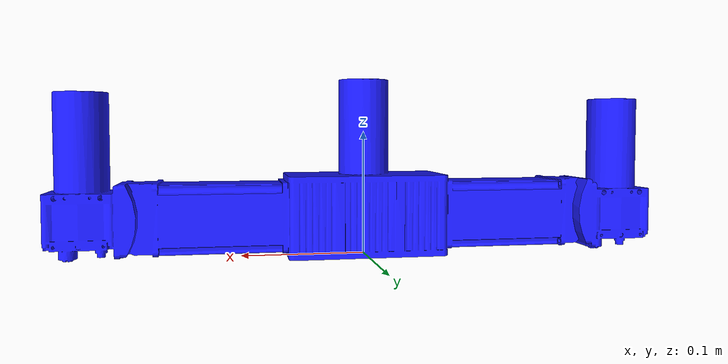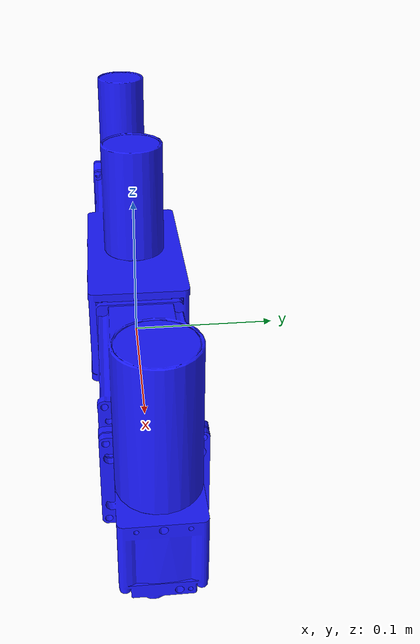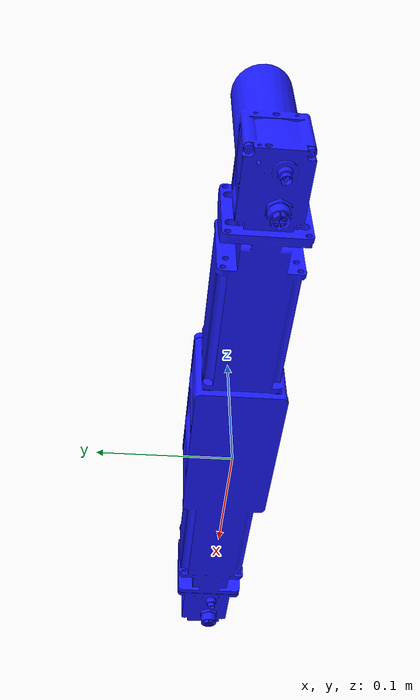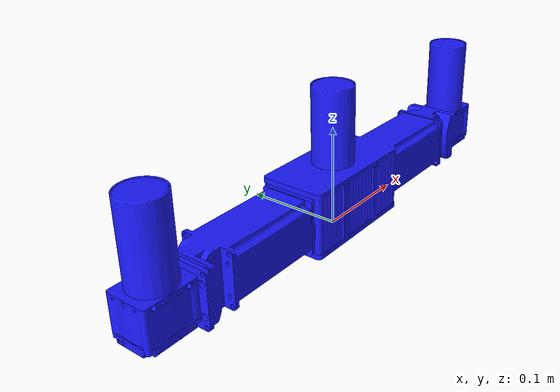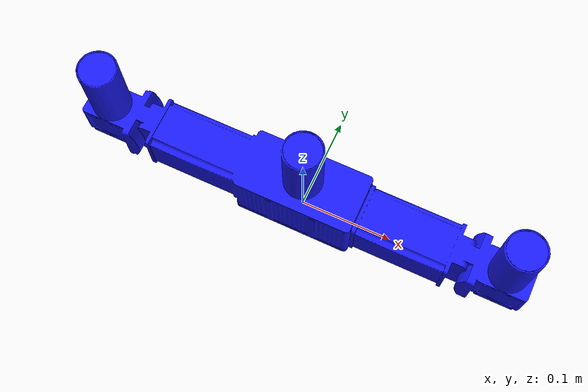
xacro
<?xml version="1.0"?>
<robot name="ensenso_camera" xmlns:xacro="http://www.ros.org/wiki/xacro">
  <xacro:include filename="$(find ensenso_description)/ensenso.xacro" />

  <!-- Parameters -->
  <!-- Name of the camera -->
  <xacro:arg name="camera" default="X400_xFA" />
  <xacro:property name="camera_name" value="$(arg camera)" />

  <!-- Enlarges the bounding box in all directions -->
  <xacro:arg name="margin" default="0.03" />
  <xacro:property name="margin" value="$(arg margin)" />

  <!-- tf frame that references to the cameras mounting frame -->
  <xacro:arg name="corresponding_frame_name" default="base_link" />
  <xacro:property name="corresponding_frame_name" value="$(arg corresponding_frame_name)" />

  <xacro:ensenso_X400_xFA_Series name="${camera_name}" margin="${margin}"/>
  <joint name="${corresponding_frame_name}_to_${camera_name}" type="fixed">
    <parent link="${corresponding_frame_name}" />
    <child link="${camera_name}" />
    <origin xyz="0 0 0" rpy="0 0 0" />
  </joint>

  <link name="${corresponding_frame_name}" />
</robot>
<!-- example usage with:
  roslaunch urdf_tutorial display.launch model:=`rospack find ensenso_description`/ensenso_X400_xFA_Series.xacro gui:=true
-->

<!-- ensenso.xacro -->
<robot name="ensenso_camera" xmlns:xacro="http://www.ros.org/wiki/xacro">

<material name="Ensenso/Blue">
  <color rgba="0.1 0.1 1.0 1.0"/>
</material>
<material name="Ensenso/Black">
  <color rgba="0.0 0.0 0.0 1.0"/>
</material>
<material name="Ensenso/DarkGrey">
  <color rgba="0.35 0.35 0.35 1.0"/>
</material>

<xacro:macro name="ensenso_Sx_Series" params="name margin:=0.03">
    <link name="${name}">
      <visual>
        <origin rpy="0 0 0" xyz="0.00 0.0 0.0"/>
        <geometry>
          <mesh filename="package://ensenso_description/stl_meshes/Sx.stl"/>
        </geometry>
        <material name="Ensenso/Blue"/>
      </visual>
      <collision>
        <material name="Ensenso/Black"/>
        <origin rpy="0 0 0" xyz="0 0.00 0.0219"/>
        <geometry>
          <box size="${margin+0.130} ${margin+0.045} ${margin+0.0438}"/>
        </geometry>
      </collision>
    </link>

    <!-- Left lens -->
    <joint name="${name}_left_lens_joint" type="fixed">
      <parent link="${name}"/>
      <child link="${name}_left_lens_frame"/>
      <origin xyz="-0.045 0.00 0.05" rpy="0 0 0"/>
    </joint>
    <link name="${name}_left_lens_frame"/>
  </xacro:macro>

  <xacro:macro name="ensenso_N3x_Series" params="name margin:=0.03">
    <link name="${name}">
      <visual>
        <origin rpy="0 0 0" xyz="0.00 0.0 0.0"/>
        <geometry>
          <mesh filename="package://ensenso_description/stl_meshes/N3x.stl"/>
        </geometry>
        <material name="Ensenso/Blue"/>
      </visual>
      <collision>
        <origin rpy="0 0 0" xyz="-0.0085 0.00 0.026"/>
        <geometry>
          <box size="${margin+0.192} ${margin+0.050} ${margin+0.052}"/>
        </geometry>
      </collision>
    </link>

    <!-- Left lens -->
    <joint name="${name}_left_lens_joint" type="fixed">
      <parent link="${name}"/>
      <child link="${name}_left_lens_frame"/>
      <origin xyz="-0.05 0.00 0.05" rpy="0 0 0"/>
    </joint>
    <link name="${name}_left_lens_frame"/>
  </xacro:macro>

  <xacro:macro name="ensenso_N4x_Series" params="name margin:=0.03">
    <link name="${name}">
      <visual>
        <origin rpy="0 0 0" xyz="0.00 0.0 0.0"/>
        <geometry>
          <mesh filename="package://ensenso_description/stl_meshes/N4x.stl"/>
        </geometry>
        <material name="Ensenso/Blue"/>
      </visual>
      <collision>
        <origin rpy="0 0 0" xyz="-0.0085 0.00 0.026"/>
        <geometry>
          <box size="${margin+0.192} ${margin+0.050} ${margin+0.052}"/>
        </geometry>
      </collision>
    </link>

    <!-- Left lens -->
    <joint name="${name}_left_lens_joint" type="fixed">
      <parent link="${name}"/>
      <child link="${name}_left_lens_frame"/>
      <origin xyz="-0.05 0.00 0.05" rpy="0 0 0"/>
    </joint>
    <link name="${name}_left_lens_frame"/>
  </xacro:macro>

  <xacro:macro name="ensenso_X200_Series" params="name margin:=0.03">
    <link name="${name}">
      <visual>
        <origin rpy="0 0 0" xyz="0 0 0"/>
        <geometry>
          <mesh filename="package://ensenso_description/stl_meshes/X3x-5CP-200.stl"/>
        </geometry>
        <material name="Ensenso/Blue"/>
      </visual>
      <collision>
        <origin rpy="0.0 0.0 0.0" xyz="0.0 0.0 ${0.033+0.05/2}"/>
        <geometry>
          <box size="${margin+0.24350} ${margin+0.066} ${margin+0.08+0.05}"/>
        </geometry>
      </collision>
    </link>

    <!-- Left lens -->
    <joint name="${name}_left_lens_joint" type="fixed">
      <parent link="${name}"/>
      <child link="${name}_left_lens_frame"/>
      <origin xyz="-0.113 0.0 0.063" rpy="0 0 0"/>
    </joint>
    <link name="${name}_left_lens_frame"/>
  </xacro:macro>

  <xacro:macro name="ensenso_X200_xFA_Series" params="name margin:=0.03">
    <link name="${name}">
      <visual>
        <origin rpy="0 0 0" xyz="0 0 0"/>
        <geometry>
          <mesh filename="package://ensenso_description/stl_meshes/X3x-xFA-200.stl"/>
        </geometry>
        <material name="Ensenso/Blue"/>
      </visual>
      <collision>
        <origin rpy="0.0 0.0 0.0" xyz="0.0 0.0 ${0.033+0.05/2}"/>
        <geometry>
          <box size="${margin+0.2870} ${margin+0.066} ${margin+0.09+0.05}"/>
        </geometry>
      </collision>
    </link>

    <!-- Left lens -->
    <joint name="${name}_left_lens_joint" type="fixed">
      <parent link="${name}"/>
      <child link="${name}_left_lens_frame"/>
      <origin xyz="-0.123 0.0 0.063" rpy="0 0 0"/>
    </joint>
    <link name="${name}_left_lens_frame"/>
  </xacro:macro>

  <xacro:macro name="ensenso_X400_Series" params="name margin:=0.03">
    <link name="${name}">
      <visual>
        <origin rpy="0 0 0" xyz="0 0 0"/>
        <geometry>
          <mesh filename="package://ensenso_description/stl_meshes/X3x-5CP-400.stl"/>
        </geometry>
        <material name="Ensenso/Blue"/>
      </visual>
      <collision>
        <origin rpy="0.0 0.0 0.0" xyz="0.0 0.0 ${0.033+0.05/2}"/>
        <geometry>
          <box size="${margin+0.4515} ${margin+0.066} ${margin+0.08+0.05}"/>
        </geometry>
      </collision>
    </link>

    <!-- Left lens -->
    <joint name="${name}_left_lens_joint" type="fixed">
      <parent link="${name}"/>
      <child link="${name}_left_lens_frame"/>
      <origin xyz="-0.2109 0.0 0.063" rpy="0 0 0"/>
    </joint>
    <link name="${name}_left_lens_frame"/>
  </xacro:macro>

  <xacro:macro name="ensenso_X400_xFA_Series" params="name margin:=0.03">
    <link name="${name}">
      <visual>
        <origin rpy="0 0 0" xyz="0 0 0"/>
        <geometry>
          <mesh filename="package://ensenso_description/stl_meshes/X3x-xFA-400.stl"/>
        </geometry>
        <material name="Ensenso/Blue"/>
      </visual>
      <collision>
        <origin rpy="0.0 0.0 0.0" xyz="0.0 0.0 ${0.033+0.05/2}"/>
        <geometry>
          <box size="${margin+0.4950} ${margin+0.066} ${margin+0.09+0.05}"/>
        </geometry>
      </collision>
    </link>

    <!-- Left lens -->
    <joint name="${name}_left_lens_joint" type="fixed">
      <parent link="${name}"/>
      <child link="${name}_left_lens_frame"/>
      <origin xyz="-0.22125 0 0.063" rpy="0 0 0"/>
    </joint>
    <link name="${name}_left_lens_frame"/>
  </xacro:macro>

  <xacro:macro name="ensenso_CxS_Series" params="name margin:=0.03">
    <link name="${name}">
      <visual>
        <origin rpy="0 0 0" xyz="0 0 0"/>
        <geometry>
          <mesh filename="package://ensenso_description/stl_meshes/Cx-S.stl"/>
        </geometry>
        <material name="Ensenso/DarkGrey"/>
      </visual>
      <collision>
        <origin rpy="0.0 0.0 0.0" xyz="0.0 0.0 ${0.10/2}"/>
        <geometry>
          <box size="${margin+0.300} ${margin+0.06} ${margin+0.10+0.02}"/>
        </geometry>
      </collision>
    </link>

    <!-- Left lens -->
    <joint name="${name}_left_lens_joint" type="fixed">
      <parent link="${name}"/>
      <child link="${name}_left_lens_frame"/>
      <origin xyz="${-0.240/2} 0.0 0.032" rpy="0 0 0"/>
    </joint>
    <link name="${name}_left_lens_frame"/>
  </xacro:macro>

  <xacro:macro name="ensenso_CxM_Series" params="name margin:=0.03">
    <link name="${name}">
      <visual>
        <origin rpy="0 0 0" xyz="0 0 0"/>
        <geometry>
          <mesh filename="package://ensenso_description/stl_meshes/Cx-M.stl"/>
        </geometry>
        <material name="Ensenso/DarkGrey"/>
      </visual>
      <collision>
        <origin rpy="0.0 0.0 0.0" xyz="0.0 0.0 ${0.10/2}"/>
        <geometry>
          <box size="${margin+0.510} ${margin+0.06} ${margin+0.10+0.02}"/>
        </geometry>
      </collision>
    </link>

    <!-- Left lens -->
    <joint name="${name}_left_lens_joint" type="fixed">
      <parent link="${name}"/>
      <child link="${name}_left_lens_frame"/>
      <origin xyz="${-0.455/2} 0 0.032" rpy="0 0 0"/>
    </joint>
    <link name="${name}_left_lens_frame"/>
  </xacro:macro>

  <xacro:macro name="ensenso_CxL_Series" params="name margin:=0.03">
    <link name="${name}">
      <visual>
        <origin rpy="0 0 ${pi}" xyz="0 0 0"/>
        <geometry>
          <mesh filename="package://ensenso_description/stl_meshes/Cx-L.stl"/>
        </geometry>
        <material name="Ensenso/DarkGrey"/>
      </visual>
      <collision>
        <origin rpy="0.0 0.0 0.0" xyz="0.0 0.0 ${0.10/2}"/>
        <geometry>
          <box size="${margin+0.910} ${margin+0.06} ${margin+0.10+0.02}"/>
        </geometry>
      </collision>
    </link>

    <!-- Left lens -->
    <joint name="${name}_left_lens_joint" type="fixed">
      <parent link="${name}"/>
      <child link="${name}_left_lens_frame"/>
      <origin xyz="${-0.850/2} 0 0.032" rpy="0 0 0"/>
    </joint>
    <link name="${name}_left_lens_frame"/>
  </xacro:macro>

</robot>
